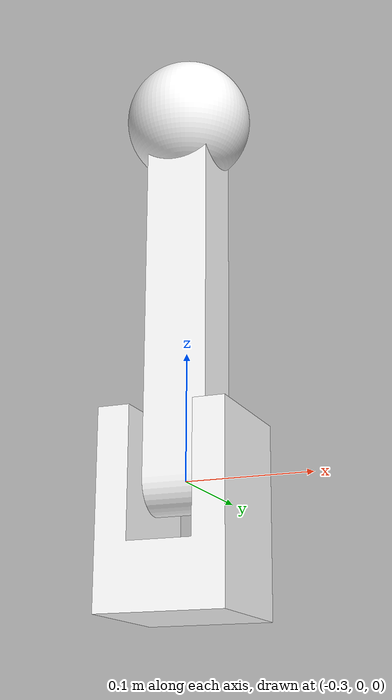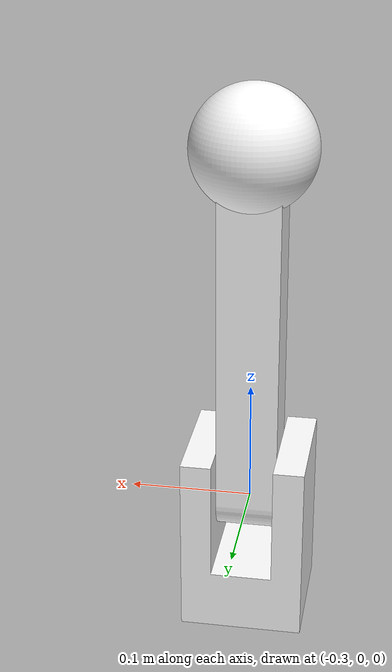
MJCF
<mujoco model="inv_pendulum">
    <compiler angle="radian" meshdir="meshes" autolimits="true"/>
    <asset>
        <mesh name="obstacle_base_link" file="obstacle_base_link.STL" />
        <mesh name="obstacle_link1" file="obstacle_link1.STL" />
        <mesh name="obstacle_link2" file="obstacle_link2.STL" />
    </asset>
    <worldbody>
        <body name="obstacle_base_link" pos="-0.3 0 0" quat="0.707 0.707 0 0">
            <geom type="mesh" name="obstacle_base_link" contype="0" conaffinity="0" group="1" rgba="1 1 1 1" mesh="obstacle_base_link" condim="1"/>
            <body name="obstacle_link1" pos="0 0 0" quat="0.707 0 0.707 0">
                <inertial pos="0 0.15 0" mass="0.722837" diaginertia="0.0079476 0.0003369 0.0078975"/>
                <joint name="obstacle_joint1" pos="0 0 0" axis="0 0 1" limited="true" range="-3.107 3.107" />
                <geom type="mesh" contype="0" conaffinity="0" group="1" rgba="1 1 1 1" mesh="obstacle_link1" condim="1"/>
<!--                contype = 0 : 不参与碰撞检测   -->
                <body name="obstacle_link2" pos="0 0.3 0" quat="1 0 0 0">
                    <inertial pos="0 0 0" mass="0.408407" diaginertia="0.0004084 0.0004084 0.0004084" />
                    <joint name="obstacle_joint2" pos="0 0 0" axis="0 1 0" limited="true" range="-3.107 3.107" />
                    <geom type="mesh" contype="0" conaffinity="0" group="1" rgba="1 1 1 1" mesh="obstacle_link2" condim="1"/>
                    <site name="eef_site" pos="0 0 0" rgba="1 0 0 1" size="0.01" type="sphere" />
                </body>
            </body>
        </body>
    </worldbody>

    <actuator>
        <motor name='obstacle_joint1_T' ctrllimited="true" ctrlrange="-3.107 3.107" joint='obstacle_joint1' gear='1'/>
        <motor name='obstacle_joint2_T' ctrllimited="true" ctrlrange="-3.107 3.107" joint='obstacle_joint2' gear='1'/>
    </actuator>

</mujoco>
